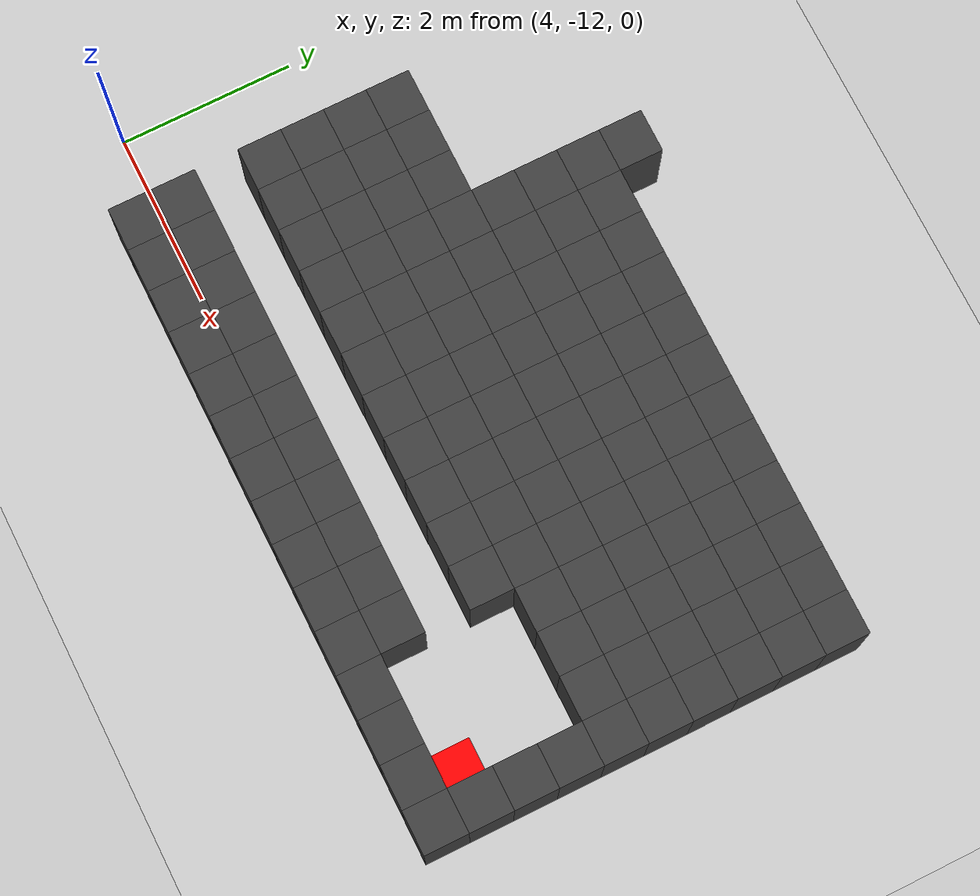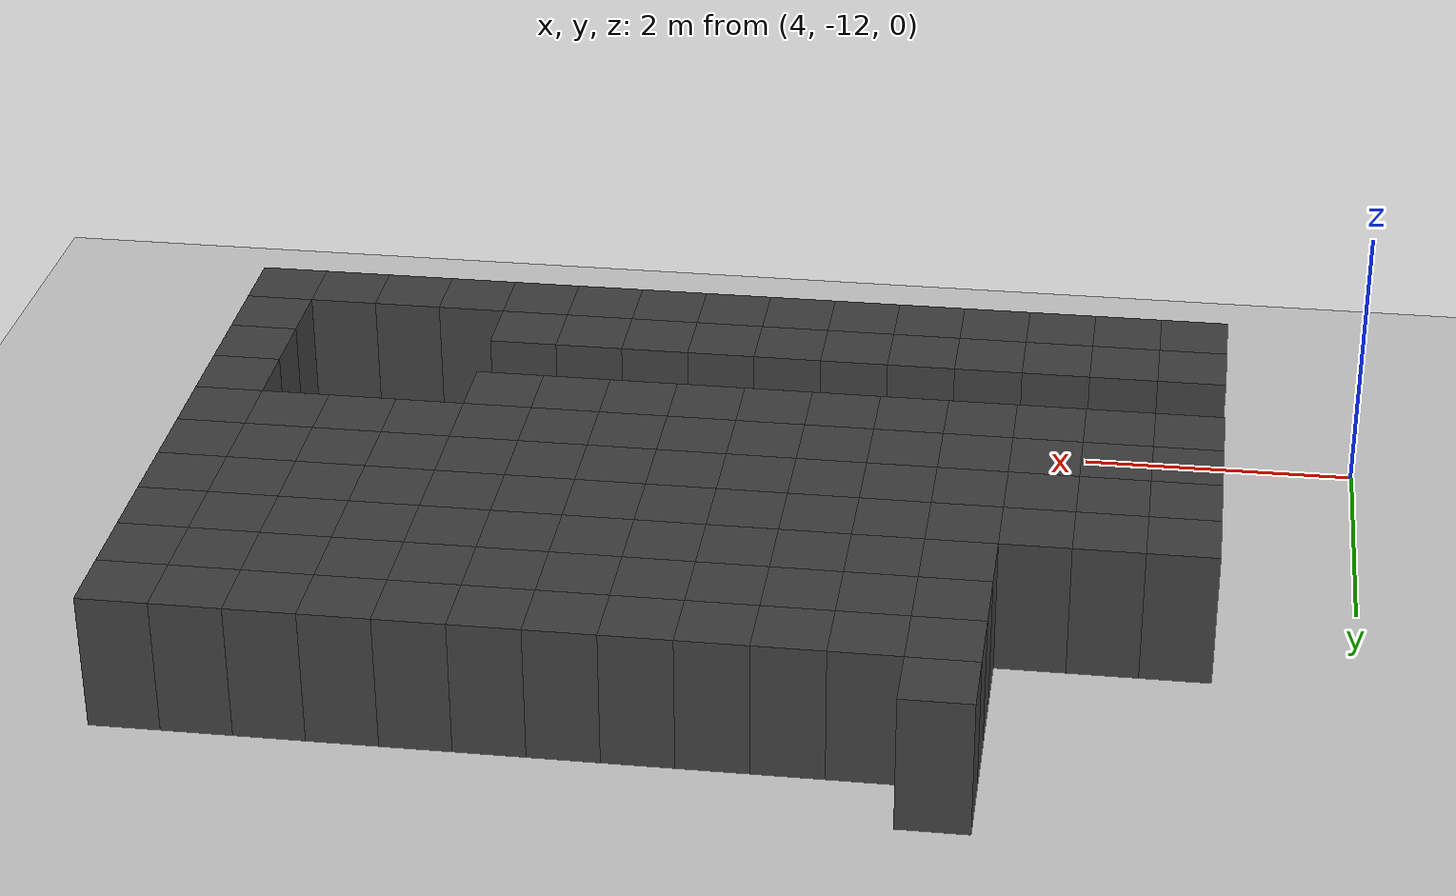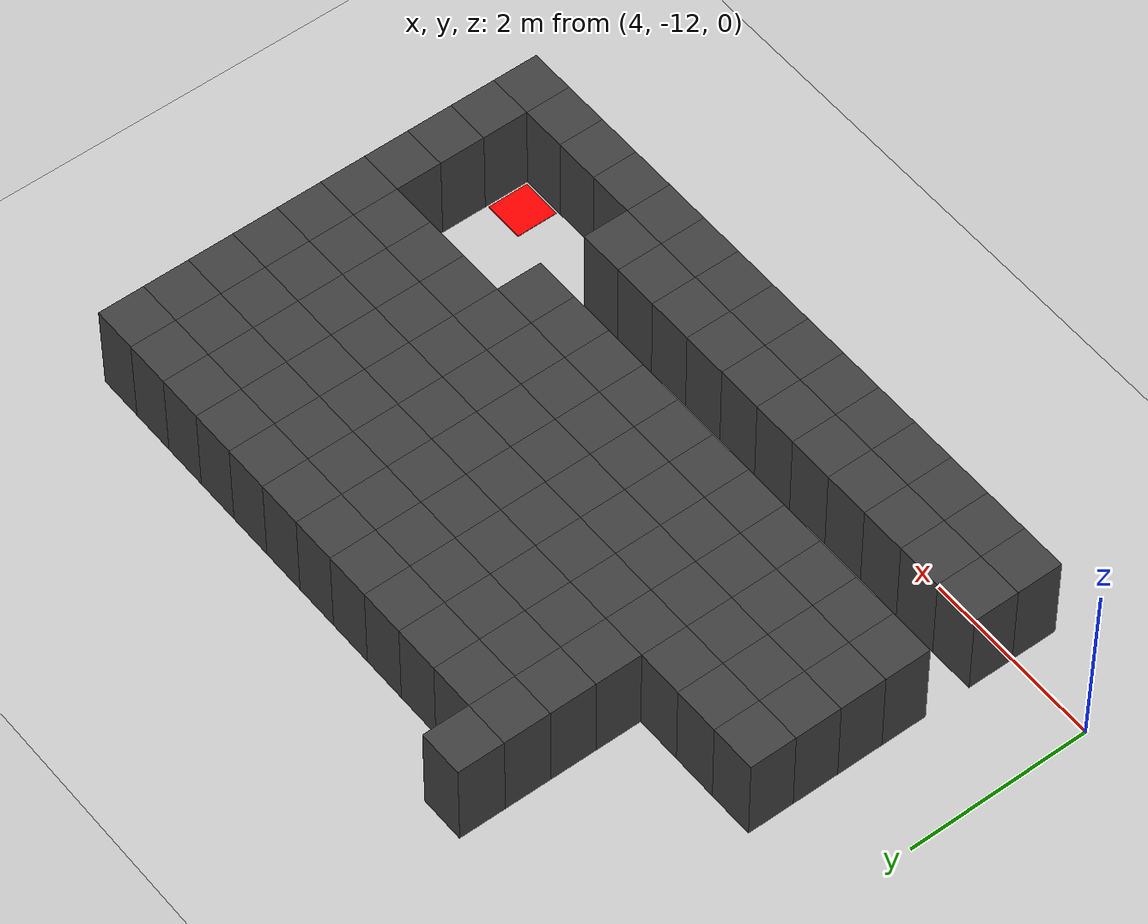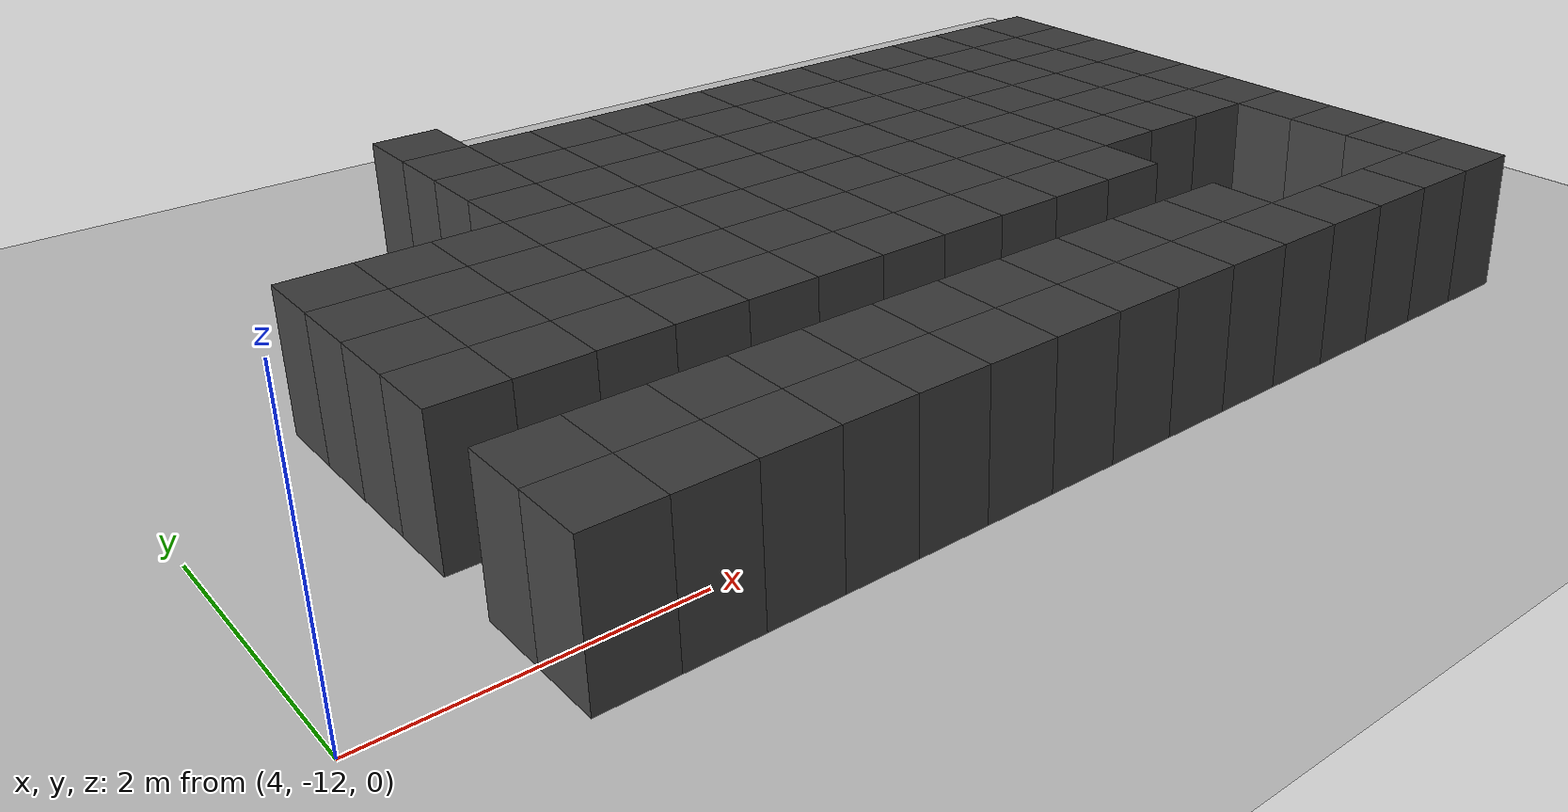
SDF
<sdf version="1.7">
 <world name="map_13364">
  <model name="ground_plane">
   <static>true</static>
   <link name="link">
    <collision name="collision">
     <geometry><plane><normal>0 0 1</normal><size>200 200</size></plane></geometry>
    </collision>
    <visual name="visual">
     <geometry><plane><normal>0 0 1</normal><size>200 200</size></plane></geometry>
     <material><ambient>0.8 0.8 0.8 1</ambient><diffuse>0.8 0.8 0.8 1</diffuse></material>
    </visual>
   </link>
  </model>
  <model name="maze_environment">
   <static>true</static>
   <link name="wall_1430">
    <pose>6.750 -7.250 0.500 0 0 0</pose>
    <collision name="col"><geometry><box><size>0.5 0.5 1.0</size></box></geometry></collision>
    <visual name="vis">
     <geometry><box><size>0.5 0.5 1.0</size></box></geometry>
     <material><ambient>0.15 0.15 0.15 1</ambient><diffuse>0.25 0.25 0.25 1</diffuse></material>
    </visual>
   </link>
   <link name="wall_1467">
    <pose>6.750 -7.750 0.500 0 0 0</pose>
    <collision name="col"><geometry><box><size>0.5 0.5 1.0</size></box></geometry></collision>
    <visual name="vis">
     <geometry><box><size>0.5 0.5 1.0</size></box></geometry>
     <material><ambient>0.15 0.15 0.15 1</ambient><diffuse>0.25 0.25 0.25 1</diffuse></material>
    </visual>
   </link>
   <link name="wall_1468">
    <pose>7.250 -7.750 0.500 0 0 0</pose>
    <collision name="col"><geometry><box><size>0.5 0.5 1.0</size></box></geometry></collision>
    <visual name="vis">
     <geometry><box><size>0.5 0.5 1.0</size></box></geometry>
     <material><ambient>0.15 0.15 0.15 1</ambient><diffuse>0.25 0.25 0.25 1</diffuse></material>
    </visual>
   </link>
   <link name="wall_1469">
    <pose>7.750 -7.750 0.500 0 0 0</pose>
    <collision name="col"><geometry><box><size>0.5 0.5 1.0</size></box></geometry></collision>
    <visual name="vis">
     <geometry><box><size>0.5 0.5 1.0</size></box></geometry>
     <material><ambient>0.15 0.15 0.15 1</ambient><diffuse>0.25 0.25 0.25 1</diffuse></material>
    </visual>
   </link>
   <link name="wall_1470">
    <pose>8.250 -7.750 0.500 0 0 0</pose>
    <collision name="col"><geometry><box><size>0.5 0.5 1.0</size></box></geometry></collision>
    <visual name="vis">
     <geometry><box><size>0.5 0.5 1.0</size></box></geometry>
     <material><ambient>0.15 0.15 0.15 1</ambient><diffuse>0.25 0.25 0.25 1</diffuse></material>
    </visual>
   </link>
   <link name="wall_1471">
    <pose>8.750 -7.750 0.500 0 0 0</pose>
    <collision name="col"><geometry><box><size>0.5 0.5 1.0</size></box></geometry></collision>
    <visual name="vis">
     <geometry><box><size>0.5 0.5 1.0</size></box></geometry>
     <material><ambient>0.15 0.15 0.15 1</ambient><diffuse>0.25 0.25 0.25 1</diffuse></material>
    </visual>
   </link>
   <link name="wall_1472">
    <pose>9.250 -7.750 0.500 0 0 0</pose>
    <collision name="col"><geometry><box><size>0.5 0.5 1.0</size></box></geometry></collision>
    <visual name="vis">
     <geometry><box><size>0.5 0.5 1.0</size></box></geometry>
     <material><ambient>0.15 0.15 0.15 1</ambient><diffuse>0.25 0.25 0.25 1</diffuse></material>
    </visual>
   </link>
   <link name="wall_1473">
    <pose>9.750 -7.750 0.500 0 0 0</pose>
    <collision name="col"><geometry><box><size>0.5 0.5 1.0</size></box></geometry></collision>
    <visual name="vis">
     <geometry><box><size>0.5 0.5 1.0</size></box></geometry>
     <material><ambient>0.15 0.15 0.15 1</ambient><diffuse>0.25 0.25 0.25 1</diffuse></material>
    </visual>
   </link>
   <link name="wall_1474">
    <pose>10.250 -7.750 0.500 0 0 0</pose>
    <collision name="col"><geometry><box><size>0.5 0.5 1.0</size></box></geometry></collision>
    <visual name="vis">
     <geometry><box><size>0.5 0.5 1.0</size></box></geometry>
     <material><ambient>0.15 0.15 0.15 1</ambient><diffuse>0.25 0.25 0.25 1</diffuse></material>
    </visual>
   </link>
   <link name="wall_1475">
    <pose>10.750 -7.750 0.500 0 0 0</pose>
    <collision name="col"><geometry><box><size>0.5 0.5 1.0</size></box></geometry></collision>
    <visual name="vis">
     <geometry><box><size>0.5 0.5 1.0</size></box></geometry>
     <material><ambient>0.15 0.15 0.15 1</ambient><diffuse>0.25 0.25 0.25 1</diffuse></material>
    </visual>
   </link>
   <link name="wall_1476">
    <pose>11.250 -7.750 0.500 0 0 0</pose>
    <collision name="col"><geometry><box><size>0.5 0.5 1.0</size></box></geometry></collision>
    <visual name="vis">
     <geometry><box><size>0.5 0.5 1.0</size></box></geometry>
     <material><ambient>0.15 0.15 0.15 1</ambient><diffuse>0.25 0.25 0.25 1</diffuse></material>
    </visual>
   </link>
   <link name="wall_1477">
    <pose>11.750 -7.750 0.500 0 0 0</pose>
    <collision name="col"><geometry><box><size>0.5 0.5 1.0</size></box></geometry></collision>
    <visual name="vis">
     <geometry><box><size>0.5 0.5 1.0</size></box></geometry>
     <material><ambient>0.15 0.15 0.15 1</ambient><diffuse>0.25 0.25 0.25 1</diffuse></material>
    </visual>
   </link>
   <link name="wall_1478">
    <pose>12.250 -7.750 0.500 0 0 0</pose>
    <collision name="col"><geometry><box><size>0.5 0.5 1.0</size></box></geometry></collision>
    <visual name="vis">
     <geometry><box><size>0.5 0.5 1.0</size></box></geometry>
     <material><ambient>0.15 0.15 0.15 1</ambient><diffuse>0.25 0.25 0.25 1</diffuse></material>
    </visual>
   </link>
   <link name="wall_1504">
    <pose>6.750 -8.250 0.500 0 0 0</pose>
    <collision name="col"><geometry><box><size>0.5 0.5 1.0</size></box></geometry></collision>
    <visual name="vis">
     <geometry><box><size>0.5 0.5 1.0</size></box></geometry>
     <material><ambient>0.15 0.15 0.15 1</ambient><diffuse>0.25 0.25 0.25 1</diffuse></material>
    </visual>
   </link>
   <link name="wall_1505">
    <pose>7.250 -8.250 0.500 0 0 0</pose>
    <collision name="col"><geometry><box><size>0.5 0.5 1.0</size></box></geometry></collision>
    <visual name="vis">
     <geometry><box><size>0.5 0.5 1.0</size></box></geometry>
     <material><ambient>0.15 0.15 0.15 1</ambient><diffuse>0.25 0.25 0.25 1</diffuse></material>
    </visual>
   </link>
   <link name="wall_1506">
    <pose>7.750 -8.250 0.500 0 0 0</pose>
    <collision name="col"><geometry><box><size>0.5 0.5 1.0</size></box></geometry></collision>
    <visual name="vis">
     <geometry><box><size>0.5 0.5 1.0</size></box></geometry>
     <material><ambient>0.15 0.15 0.15 1</ambient><diffuse>0.25 0.25 0.25 1</diffuse></material>
    </visual>
   </link>
   <link name="wall_1507">
    <pose>8.250 -8.250 0.500 0 0 0</pose>
    <collision name="col"><geometry><box><size>0.5 0.5 1.0</size></box></geometry></collision>
    <visual name="vis">
     <geometry><box><size>0.5 0.5 1.0</size></box></geometry>
     <material><ambient>0.15 0.15 0.15 1</ambient><diffuse>0.25 0.25 0.25 1</diffuse></material>
    </visual>
   </link>
   <link name="wall_1508">
    <pose>8.750 -8.250 0.500 0 0 0</pose>
    <collision name="col"><geometry><box><size>0.5 0.5 1.0</size></box></geometry></collision>
    <visual name="vis">
     <geometry><box><size>0.5 0.5 1.0</size></box></geometry>
     <material><ambient>0.15 0.15 0.15 1</ambient><diffuse>0.25 0.25 0.25 1</diffuse></material>
    </visual>
   </link>
   <link name="wall_1509">
    <pose>9.250 -8.250 0.500 0 0 0</pose>
    <collision name="col"><geometry><box><size>0.5 0.5 1.0</size></box></geometry></collision>
    <visual name="vis">
     <geometry><box><size>0.5 0.5 1.0</size></box></geometry>
     <material><ambient>0.15 0.15 0.15 1</ambient><diffuse>0.25 0.25 0.25 1</diffuse></material>
    </visual>
   </link>
   <link name="wall_1510">
    <pose>9.750 -8.250 0.500 0 0 0</pose>
    <collision name="col"><geometry><box><size>0.5 0.5 1.0</size></box></geometry></collision>
    <visual name="vis">
     <geometry><box><size>0.5 0.5 1.0</size></box></geometry>
     <material><ambient>0.15 0.15 0.15 1</ambient><diffuse>0.25 0.25 0.25 1</diffuse></material>
    </visual>
   </link>
   <link name="wall_1511">
    <pose>10.250 -8.250 0.500 0 0 0</pose>
    <collision name="col"><geometry><box><size>0.5 0.5 1.0</size></box></geometry></collision>
    <visual name="vis">
     <geometry><box><size>0.5 0.5 1.0</size></box></geometry>
     <material><ambient>0.15 0.15 0.15 1</ambient><diffuse>0.25 0.25 0.25 1</diffuse></material>
    </visual>
   </link>
   <link name="wall_1512">
    <pose>10.750 -8.250 0.500 0 0 0</pose>
    <collision name="col"><geometry><box><size>0.5 0.5 1.0</size></box></geometry></collision>
    <visual name="vis">
     <geometry><box><size>0.5 0.5 1.0</size></box></geometry>
     <material><ambient>0.15 0.15 0.15 1</ambient><diffuse>0.25 0.25 0.25 1</diffuse></material>
    </visual>
   </link>
   <link name="wall_1513">
    <pose>11.250 -8.250 0.500 0 0 0</pose>
    <collision name="col"><geometry><box><size>0.5 0.5 1.0</size></box></geometry></collision>
    <visual name="vis">
     <geometry><box><size>0.5 0.5 1.0</size></box></geometry>
     <material><ambient>0.15 0.15 0.15 1</ambient><diffuse>0.25 0.25 0.25 1</diffuse></material>
    </visual>
   </link>
   <link name="wall_1514">
    <pose>11.750 -8.250 0.500 0 0 0</pose>
    <collision name="col"><geometry><box><size>0.5 0.5 1.0</size></box></geometry></collision>
    <visual name="vis">
     <geometry><box><size>0.5 0.5 1.0</size></box></geometry>
     <material><ambient>0.15 0.15 0.15 1</ambient><diffuse>0.25 0.25 0.25 1</diffuse></material>
    </visual>
   </link>
   <link name="wall_1515">
    <pose>12.250 -8.250 0.500 0 0 0</pose>
    <collision name="col"><geometry><box><size>0.5 0.5 1.0</size></box></geometry></collision>
    <visual name="vis">
     <geometry><box><size>0.5 0.5 1.0</size></box></geometry>
     <material><ambient>0.15 0.15 0.15 1</ambient><diffuse>0.25 0.25 0.25 1</diffuse></material>
    </visual>
   </link>
   <link name="wall_1541">
    <pose>6.750 -8.750 0.500 0 0 0</pose>
    <collision name="col"><geometry><box><size>0.5 0.5 1.0</size></box></geometry></collision>
    <visual name="vis">
     <geometry><box><size>0.5 0.5 1.0</size></box></geometry>
     <material><ambient>0.15 0.15 0.15 1</ambient><diffuse>0.25 0.25 0.25 1</diffuse></material>
    </visual>
   </link>
   <link name="wall_1542">
    <pose>7.250 -8.750 0.500 0 0 0</pose>
    <collision name="col"><geometry><box><size>0.5 0.5 1.0</size></box></geometry></collision>
    <visual name="vis">
     <geometry><box><size>0.5 0.5 1.0</size></box></geometry>
     <material><ambient>0.15 0.15 0.15 1</ambient><diffuse>0.25 0.25 0.25 1</diffuse></material>
    </visual>
   </link>
   <link name="wall_1543">
    <pose>7.750 -8.750 0.500 0 0 0</pose>
    <collision name="col"><geometry><box><size>0.5 0.5 1.0</size></box></geometry></collision>
    <visual name="vis">
     <geometry><box><size>0.5 0.5 1.0</size></box></geometry>
     <material><ambient>0.15 0.15 0.15 1</ambient><diffuse>0.25 0.25 0.25 1</diffuse></material>
    </visual>
   </link>
   <link name="wall_1544">
    <pose>8.250 -8.750 0.500 0 0 0</pose>
    <collision name="col"><geometry><box><size>0.5 0.5 1.0</size></box></geometry></collision>
    <visual name="vis">
     <geometry><box><size>0.5 0.5 1.0</size></box></geometry>
     <material><ambient>0.15 0.15 0.15 1</ambient><diffuse>0.25 0.25 0.25 1</diffuse></material>
    </visual>
   </link>
   <link name="wall_1545">
    <pose>8.750 -8.750 0.500 0 0 0</pose>
    <collision name="col"><geometry><box><size>0.5 0.5 1.0</size></box></geometry></collision>
    <visual name="vis">
     <geometry><box><size>0.5 0.5 1.0</size></box></geometry>
     <material><ambient>0.15 0.15 0.15 1</ambient><diffuse>0.25 0.25 0.25 1</diffuse></material>
    </visual>
   </link>
   <link name="wall_1546">
    <pose>9.250 -8.750 0.500 0 0 0</pose>
    <collision name="col"><geometry><box><size>0.5 0.5 1.0</size></box></geometry></collision>
    <visual name="vis">
     <geometry><box><size>0.5 0.5 1.0</size></box></geometry>
     <material><ambient>0.15 0.15 0.15 1</ambient><diffuse>0.25 0.25 0.25 1</diffuse></material>
    </visual>
   </link>
   <link name="wall_1547">
    <pose>9.750 -8.750 0.500 0 0 0</pose>
    <collision name="col"><geometry><box><size>0.5 0.5 1.0</size></box></geometry></collision>
    <visual name="vis">
     <geometry><box><size>0.5 0.5 1.0</size></box></geometry>
     <material><ambient>0.15 0.15 0.15 1</ambient><diffuse>0.25 0.25 0.25 1</diffuse></material>
    </visual>
   </link>
   <link name="wall_1548">
    <pose>10.250 -8.750 0.500 0 0 0</pose>
    <collision name="col"><geometry><box><size>0.5 0.5 1.0</size></box></geometry></collision>
    <visual name="vis">
     <geometry><box><size>0.5 0.5 1.0</size></box></geometry>
     <material><ambient>0.15 0.15 0.15 1</ambient><diffuse>0.25 0.25 0.25 1</diffuse></material>
    </visual>
   </link>
   <link name="wall_1549">
    <pose>10.750 -8.750 0.500 0 0 0</pose>
    <collision name="col"><geometry><box><size>0.5 0.5 1.0</size></box></geometry></collision>
    <visual name="vis">
     <geometry><box><size>0.5 0.5 1.0</size></box></geometry>
     <material><ambient>0.15 0.15 0.15 1</ambient><diffuse>0.25 0.25 0.25 1</diffuse></material>
    </visual>
   </link>
   <link name="wall_1550">
    <pose>11.250 -8.750 0.500 0 0 0</pose>
    <collision name="col"><geometry><box><size>0.5 0.5 1.0</size></box></geometry></collision>
    <visual name="vis">
     <geometry><box><size>0.5 0.5 1.0</size></box></geometry>
     <material><ambient>0.15 0.15 0.15 1</ambient><diffuse>0.25 0.25 0.25 1</diffuse></material>
    </visual>
   </link>
   <link name="wall_1551">
    <pose>11.750 -8.750 0.500 0 0 0</pose>
    <collision name="col"><geometry><box><size>0.5 0.5 1.0</size></box></geometry></collision>
    <visual name="vis">
     <geometry><box><size>0.5 0.5 1.0</size></box></geometry>
     <material><ambient>0.15 0.15 0.15 1</ambient><diffuse>0.25 0.25 0.25 1</diffuse></material>
    </visual>
   </link>
   <link name="wall_1552">
    <pose>12.250 -8.750 0.500 0 0 0</pose>
    <collision name="col"><geometry><box><size>0.5 0.5 1.0</size></box></geometry></collision>
    <visual name="vis">
     <geometry><box><size>0.5 0.5 1.0</size></box></geometry>
     <material><ambient>0.15 0.15 0.15 1</ambient><diffuse>0.25 0.25 0.25 1</diffuse></material>
    </visual>
   </link>
   <link name="wall_1581">
    <pose>5.250 -9.250 0.500 0 0 0</pose>
    <collision name="col"><geometry><box><size>0.5 0.5 1.0</size></box></geometry></collision>
    <visual name="vis">
     <geometry><box><size>0.5 0.5 1.0</size></box></geometry>
     <material><ambient>0.15 0.15 0.15 1</ambient><diffuse>0.25 0.25 0.25 1</diffuse></material>
    </visual>
   </link>
   <link name="wall_1582">
    <pose>5.750 -9.250 0.500 0 0 0</pose>
    <collision name="col"><geometry><box><size>0.5 0.5 1.0</size></box></geometry></collision>
    <visual name="vis">
     <geometry><box><size>0.5 0.5 1.0</size></box></geometry>
     <material><ambient>0.15 0.15 0.15 1</ambient><diffuse>0.25 0.25 0.25 1</diffuse></material>
    </visual>
   </link>
   <link name="wall_1583">
    <pose>6.250 -9.250 0.500 0 0 0</pose>
    <collision name="col"><geometry><box><size>0.5 0.5 1.0</size></box></geometry></collision>
    <visual name="vis">
     <geometry><box><size>0.5 0.5 1.0</size></box></geometry>
     <material><ambient>0.15 0.15 0.15 1</ambient><diffuse>0.25 0.25 0.25 1</diffuse></material>
    </visual>
   </link>
   <link name="wall_1584">
    <pose>6.750 -9.250 0.500 0 0 0</pose>
    <collision name="col"><geometry><box><size>0.5 0.5 1.0</size></box></geometry></collision>
    <visual name="vis">
     <geometry><box><size>0.5 0.5 1.0</size></box></geometry>
     <material><ambient>0.15 0.15 0.15 1</ambient><diffuse>0.25 0.25 0.25 1</diffuse></material>
    </visual>
   </link>
   <link name="wall_1585">
    <pose>7.250 -9.250 0.500 0 0 0</pose>
    <collision name="col"><geometry><box><size>0.5 0.5 1.0</size></box></geometry></collision>
    <visual name="vis">
     <geometry><box><size>0.5 0.5 1.0</size></box></geometry>
     <material><ambient>0.15 0.15 0.15 1</ambient><diffuse>0.25 0.25 0.25 1</diffuse></material>
    </visual>
   </link>
   <link name="wall_1586">
    <pose>7.750 -9.250 0.500 0 0 0</pose>
    <collision name="col"><geometry><box><size>0.5 0.5 1.0</size></box></geometry></collision>
    <visual name="vis">
     <geometry><box><size>0.5 0.5 1.0</size></box></geometry>
     <material><ambient>0.15 0.15 0.15 1</ambient><diffuse>0.25 0.25 0.25 1</diffuse></material>
    </visual>
   </link>
   <link name="wall_1587">
    <pose>8.250 -9.250 0.500 0 0 0</pose>
    <collision name="col"><geometry><box><size>0.5 0.5 1.0</size></box></geometry></collision>
    <visual name="vis">
     <geometry><box><size>0.5 0.5 1.0</size></box></geometry>
     <material><ambient>0.15 0.15 0.15 1</ambient><diffuse>0.25 0.25 0.25 1</diffuse></material>
    </visual>
   </link>
   <link name="wall_1588">
    <pose>8.750 -9.250 0.500 0 0 0</pose>
    <collision name="col"><geometry><box><size>0.5 0.5 1.0</size></box></geometry></collision>
    <visual name="vis">
     <geometry><box><size>0.5 0.5 1.0</size></box></geometry>
     <material><ambient>0.15 0.15 0.15 1</ambient><diffuse>0.25 0.25 0.25 1</diffuse></material>
    </visual>
   </link>
   <link name="wall_1589">
    <pose>9.250 -9.250 0.500 0 0 0</pose>
    <collision name="col"><geometry><box><size>0.5 0.5 1.0</size></box></geometry></collision>
    <visual name="vis">
     <geometry><box><size>0.5 0.5 1.0</size></box></geometry>
     <material><ambient>0.15 0.15 0.15 1</ambient><diffuse>0.25 0.25 0.25 1</diffuse></material>
    </visual>
   </link>
   <link name="wall_1590">
    <pose>9.750 -9.250 0.500 0 0 0</pose>
    <collision name="col"><geometry><box><size>0.5 0.5 1.0</size></box></geometry></collision>
    <visual name="vis">
     <geometry><box><size>0.5 0.5 1.0</size></box></geometry>
     <material><ambient>0.15 0.15 0.15 1</ambient><diffuse>0.25 0.25 0.25 1</diffuse></material>
    </visual>
   </link>
   <link name="wall_1591">
    <pose>10.250 -9.250 0.500 0 0 0</pose>
    <collision name="col"><geometry><box><size>0.5 0.5 1.0</size></box></geometry></collision>
    <visual name="vis">
     <geometry><box><size>0.5 0.5 1.0</size></box></geometry>
     <material><ambient>0.15 0.15 0.15 1</ambient><diffuse>0.25 0.25 0.25 1</diffuse></material>
    </visual>
   </link>
   <link name="wall_1592">
    <pose>10.750 -9.250 0.500 0 0 0</pose>
    <collision name="col"><geometry><box><size>0.5 0.5 1.0</size></box></geometry></collision>
    <visual name="vis">
     <geometry><box><size>0.5 0.5 1.0</size></box></geometry>
     <material><ambient>0.15 0.15 0.15 1</ambient><diffuse>0.25 0.25 0.25 1</diffuse></material>
    </visual>
   </link>
   <link name="wall_1593">
    <pose>11.250 -9.250 0.500 0 0 0</pose>
    <collision name="col"><geometry><box><size>0.5 0.5 1.0</size></box></geometry></collision>
    <visual name="vis">
     <geometry><box><size>0.5 0.5 1.0</size></box></geometry>
     <material><ambient>0.15 0.15 0.15 1</ambient><diffuse>0.25 0.25 0.25 1</diffuse></material>
    </visual>
   </link>
   <link name="wall_1594">
    <pose>11.750 -9.250 0.500 0 0 0</pose>
    <collision name="col"><geometry><box><size>0.5 0.5 1.0</size></box></geometry></collision>
    <visual name="vis">
     <geometry><box><size>0.5 0.5 1.0</size></box></geometry>
     <material><ambient>0.15 0.15 0.15 1</ambient><diffuse>0.25 0.25 0.25 1</diffuse></material>
    </visual>
   </link>
   <link name="wall_1595">
    <pose>12.250 -9.250 0.500 0 0 0</pose>
    <collision name="col"><geometry><box><size>0.5 0.5 1.0</size></box></geometry></collision>
    <visual name="vis">
     <geometry><box><size>0.5 0.5 1.0</size></box></geometry>
     <material><ambient>0.15 0.15 0.15 1</ambient><diffuse>0.25 0.25 0.25 1</diffuse></material>
    </visual>
   </link>
   <link name="wall_1624">
    <pose>5.250 -9.750 0.500 0 0 0</pose>
    <collision name="col"><geometry><box><size>0.5 0.5 1.0</size></box></geometry></collision>
    <visual name="vis">
     <geometry><box><size>0.5 0.5 1.0</size></box></geometry>
     <material><ambient>0.15 0.15 0.15 1</ambient><diffuse>0.25 0.25 0.25 1</diffuse></material>
    </visual>
   </link>
   <link name="wall_1625">
    <pose>5.750 -9.750 0.500 0 0 0</pose>
    <collision name="col"><geometry><box><size>0.5 0.5 1.0</size></box></geometry></collision>
    <visual name="vis">
     <geometry><box><size>0.5 0.5 1.0</size></box></geometry>
     <material><ambient>0.15 0.15 0.15 1</ambient><diffuse>0.25 0.25 0.25 1</diffuse></material>
    </visual>
   </link>
   <link name="wall_1626">
    <pose>6.250 -9.750 0.500 0 0 0</pose>
    <collision name="col"><geometry><box><size>0.5 0.5 1.0</size></box></geometry></collision>
    <visual name="vis">
     <geometry><box><size>0.5 0.5 1.0</size></box></geometry>
     <material><ambient>0.15 0.15 0.15 1</ambient><diffuse>0.25 0.25 0.25 1</diffuse></material>
    </visual>
   </link>
   <link name="wall_1627">
    <pose>6.750 -9.750 0.500 0 0 0</pose>
    <collision name="col"><geometry><box><size>0.5 0.5 1.0</size></box></geometry></collision>
    <visual name="vis">
     <geometry><box><size>0.5 0.5 1.0</size></box></geometry>
     <material><ambient>0.15 0.15 0.15 1</ambient><diffuse>0.25 0.25 0.25 1</diffuse></material>
    </visual>
   </link>
   <link name="wall_1628">
    <pose>7.250 -9.750 0.500 0 0 0</pose>
    <collision name="col"><geometry><box><size>0.5 0.5 1.0</size></box></geometry></collision>
    <visual name="vis">
     <geometry><box><size>0.5 0.5 1.0</size></box></geometry>
     <material><ambient>0.15 0.15 0.15 1</ambient><diffuse>0.25 0.25 0.25 1</diffuse></material>
    </visual>
   </link>
   <link name="wall_1629">
    <pose>7.750 -9.750 0.500 0 0 0</pose>
    <collision name="col"><geometry><box><size>0.5 0.5 1.0</size></box></geometry></collision>
    <visual name="vis">
     <geometry><box><size>0.5 0.5 1.0</size></box></geometry>
     <material><ambient>0.15 0.15 0.15 1</ambient><diffuse>0.25 0.25 0.25 1</diffuse></material>
    </visual>
   </link>
   <link name="wall_1630">
    <pose>8.250 -9.750 0.500 0 0 0</pose>
    <collision name="col"><geometry><box><size>0.5 0.5 1.0</size></box></geometry></collision>
    <visual name="vis">
     <geometry><box><size>0.5 0.5 1.0</size></box></geometry>
     <material><ambient>0.15 0.15 0.15 1</ambient><diffuse>0.25 0.25 0.25 1</diffuse></material>
    </visual>
   </link>
   <link name="wall_1631">
    <pose>8.750 -9.750 0.500 0 0 0</pose>
    <collision name="col"><geometry><box><size>0.5 0.5 1.0</size></box></geometry></collision>
    <visual name="vis">
     <geometry><box><size>0.5 0.5 1.0</size></box></geometry>
     <material><ambient>0.15 0.15 0.15 1</ambient><diffuse>0.25 0.25 0.25 1</diffuse></material>
    </visual>
   </link>
   <link name="wall_1632">
    <pose>9.250 -9.750 0.500 0 0 0</pose>
    <collision name="col"><geometry><box><size>0.5 0.5 1.0</size></box></geometry></collision>
    <visual name="vis">
     <geometry><box><size>0.5 0.5 1.0</size></box></geometry>
     <material><ambient>0.15 0.15 0.15 1</ambient><diffuse>0.25 0.25 0.25 1</diffuse></material>
    </visual>
   </link>
   <link name="wall_1633">
    <pose>9.750 -9.750 0.500 0 0 0</pose>
    <collision name="col"><geometry><box><size>0.5 0.5 1.0</size></box></geometry></collision>
    <visual name="vis">
     <geometry><box><size>0.5 0.5 1.0</size></box></geometry>
     <material><ambient>0.15 0.15 0.15 1</ambient><diffuse>0.25 0.25 0.25 1</diffuse></material>
    </visual>
   </link>
   <link name="wall_1634">
    <pose>10.250 -9.750 0.500 0 0 0</pose>
    <collision name="col"><geometry><box><size>0.5 0.5 1.0</size></box></geometry></collision>
    <visual name="vis">
     <geometry><box><size>0.5 0.5 1.0</size></box></geometry>
     <material><ambient>0.15 0.15 0.15 1</ambient><diffuse>0.25 0.25 0.25 1</diffuse></material>
    </visual>
   </link>
   <link name="wall_1635">
    <pose>10.750 -9.750 0.500 0 0 0</pose>
    <collision name="col"><geometry><box><size>0.5 0.5 1.0</size></box></geometry></collision>
    <visual name="vis">
     <geometry><box><size>0.5 0.5 1.0</size></box></geometry>
     <material><ambient>0.15 0.15 0.15 1</ambient><diffuse>0.25 0.25 0.25 1</diffuse></material>
    </visual>
   </link>
   <link name="wall_1636">
    <pose>11.250 -9.750 0.500 0 0 0</pose>
    <collision name="col"><geometry><box><size>0.5 0.5 1.0</size></box></geometry></collision>
    <visual name="vis">
     <geometry><box><size>0.5 0.5 1.0</size></box></geometry>
     <material><ambient>0.15 0.15 0.15 1</ambient><diffuse>0.25 0.25 0.25 1</diffuse></material>
    </visual>
   </link>
   <link name="wall_1637">
    <pose>11.750 -9.750 0.500 0 0 0</pose>
    <collision name="col"><geometry><box><size>0.5 0.5 1.0</size></box></geometry></collision>
    <visual name="vis">
     <geometry><box><size>0.5 0.5 1.0</size></box></geometry>
     <material><ambient>0.15 0.15 0.15 1</ambient><diffuse>0.25 0.25 0.25 1</diffuse></material>
    </visual>
   </link>
   <link name="wall_1638">
    <pose>12.250 -9.750 0.500 0 0 0</pose>
    <collision name="col"><geometry><box><size>0.5 0.5 1.0</size></box></geometry></collision>
    <visual name="vis">
     <geometry><box><size>0.5 0.5 1.0</size></box></geometry>
     <material><ambient>0.15 0.15 0.15 1</ambient><diffuse>0.25 0.25 0.25 1</diffuse></material>
    </visual>
   </link>
   <link name="wall_1667">
    <pose>5.250 -10.250 0.500 0 0 0</pose>
    <collision name="col"><geometry><box><size>0.5 0.5 1.0</size></box></geometry></collision>
    <visual name="vis">
     <geometry><box><size>0.5 0.5 1.0</size></box></geometry>
     <material><ambient>0.15 0.15 0.15 1</ambient><diffuse>0.25 0.25 0.25 1</diffuse></material>
    </visual>
   </link>
   <link name="wall_1668">
    <pose>5.750 -10.250 0.500 0 0 0</pose>
    <collision name="col"><geometry><box><size>0.5 0.5 1.0</size></box></geometry></collision>
    <visual name="vis">
     <geometry><box><size>0.5 0.5 1.0</size></box></geometry>
     <material><ambient>0.15 0.15 0.15 1</ambient><diffuse>0.25 0.25 0.25 1</diffuse></material>
    </visual>
   </link>
   <link name="wall_1669">
    <pose>6.250 -10.250 0.500 0 0 0</pose>
    <collision name="col"><geometry><box><size>0.5 0.5 1.0</size></box></geometry></collision>
    <visual name="vis">
     <geometry><box><size>0.5 0.5 1.0</size></box></geometry>
     <material><ambient>0.15 0.15 0.15 1</ambient><diffuse>0.25 0.25 0.25 1</diffuse></material>
    </visual>
   </link>
   <link name="wall_1670">
    <pose>6.750 -10.250 0.500 0 0 0</pose>
    <collision name="col"><geometry><box><size>0.5 0.5 1.0</size></box></geometry></collision>
    <visual name="vis">
     <geometry><box><size>0.5 0.5 1.0</size></box></geometry>
     <material><ambient>0.15 0.15 0.15 1</ambient><diffuse>0.25 0.25 0.25 1</diffuse></material>
    </visual>
   </link>
   <link name="wall_1671">
    <pose>7.250 -10.250 0.500 0 0 0</pose>
    <collision name="col"><geometry><box><size>0.5 0.5 1.0</size></box></geometry></collision>
    <visual name="vis">
     <geometry><box><size>0.5 0.5 1.0</size></box></geometry>
     <material><ambient>0.15 0.15 0.15 1</ambient><diffuse>0.25 0.25 0.25 1</diffuse></material>
    </visual>
   </link>
   <link name="wall_1672">
    <pose>7.750 -10.250 0.500 0 0 0</pose>
    <collision name="col"><geometry><box><size>0.5 0.5 1.0</size></box></geometry></collision>
    <visual name="vis">
     <geometry><box><size>0.5 0.5 1.0</size></box></geometry>
     <material><ambient>0.15 0.15 0.15 1</ambient><diffuse>0.25 0.25 0.25 1</diffuse></material>
    </visual>
   </link>
   <link name="wall_1673">
    <pose>8.250 -10.250 0.500 0 0 0</pose>
    <collision name="col"><geometry><box><size>0.5 0.5 1.0</size></box></geometry></collision>
    <visual name="vis">
     <geometry><box><size>0.5 0.5 1.0</size></box></geometry>
     <material><ambient>0.15 0.15 0.15 1</ambient><diffuse>0.25 0.25 0.25 1</diffuse></material>
    </visual>
   </link>
   <link name="wall_1674">
    <pose>8.750 -10.250 0.500 0 0 0</pose>
    <collision name="col"><geometry><box><size>0.5 0.5 1.0</size></box></geometry></collision>
    <visual name="vis">
     <geometry><box><size>0.5 0.5 1.0</size></box></geometry>
     <material><ambient>0.15 0.15 0.15 1</ambient><diffuse>0.25 0.25 0.25 1</diffuse></material>
    </visual>
   </link>
   <link name="wall_1675">
    <pose>9.250 -10.250 0.500 0 0 0</pose>
    <collision name="col"><geometry><box><size>0.5 0.5 1.0</size></box></geometry></collision>
    <visual name="vis">
     <geometry><box><size>0.5 0.5 1.0</size></box></geometry>
     <material><ambient>0.15 0.15 0.15 1</ambient><diffuse>0.25 0.25 0.25 1</diffuse></material>
    </visual>
   </link>
   <link name="wall_1676">
    <pose>9.750 -10.250 0.500 0 0 0</pose>
    <collision name="col"><geometry><box><size>0.5 0.5 1.0</size></box></geometry></collision>
    <visual name="vis">
     <geometry><box><size>0.5 0.5 1.0</size></box></geometry>
     <material><ambient>0.15 0.15 0.15 1</ambient><diffuse>0.25 0.25 0.25 1</diffuse></material>
    </visual>
   </link>
   <link name="wall_1677">
    <pose>10.250 -10.250 0.500 0 0 0</pose>
    <collision name="col"><geometry><box><size>0.5 0.5 1.0</size></box></geometry></collision>
    <visual name="vis">
     <geometry><box><size>0.5 0.5 1.0</size></box></geometry>
     <material><ambient>0.15 0.15 0.15 1</ambient><diffuse>0.25 0.25 0.25 1</diffuse></material>
    </visual>
   </link>
   <link name="wall_1678">
    <pose>10.750 -10.250 0.500 0 0 0</pose>
    <collision name="col"><geometry><box><size>0.5 0.5 1.0</size></box></geometry></collision>
    <visual name="vis">
     <geometry><box><size>0.5 0.5 1.0</size></box></geometry>
     <material><ambient>0.15 0.15 0.15 1</ambient><diffuse>0.25 0.25 0.25 1</diffuse></material>
    </visual>
   </link>
   <link name="wall_1679">
    <pose>11.250 -10.250 0.500 0 0 0</pose>
    <collision name="col"><geometry><box><size>0.5 0.5 1.0</size></box></geometry></collision>
    <visual name="vis">
     <geometry><box><size>0.5 0.5 1.0</size></box></geometry>
     <material><ambient>0.15 0.15 0.15 1</ambient><diffuse>0.25 0.25 0.25 1</diffuse></material>
    </visual>
   </link>
   <link name="wall_1680">
    <pose>11.750 -10.250 0.500 0 0 0</pose>
    <collision name="col"><geometry><box><size>0.5 0.5 1.0</size></box></geometry></collision>
    <visual name="vis">
     <geometry><box><size>0.5 0.5 1.0</size></box></geometry>
     <material><ambient>0.15 0.15 0.15 1</ambient><diffuse>0.25 0.25 0.25 1</diffuse></material>
    </visual>
   </link>
   <link name="wall_1681">
    <pose>12.250 -10.250 0.500 0 0 0</pose>
    <collision name="col"><geometry><box><size>0.5 0.5 1.0</size></box></geometry></collision>
    <visual name="vis">
     <geometry><box><size>0.5 0.5 1.0</size></box></geometry>
     <material><ambient>0.15 0.15 0.15 1</ambient><diffuse>0.25 0.25 0.25 1</diffuse></material>
    </visual>
   </link>
   <link name="wall_1710">
    <pose>5.250 -10.750 0.500 0 0 0</pose>
    <collision name="col"><geometry><box><size>0.5 0.5 1.0</size></box></geometry></collision>
    <visual name="vis">
     <geometry><box><size>0.5 0.5 1.0</size></box></geometry>
     <material><ambient>0.15 0.15 0.15 1</ambient><diffuse>0.25 0.25 0.25 1</diffuse></material>
    </visual>
   </link>
   <link name="wall_1711">
    <pose>5.750 -10.750 0.500 0 0 0</pose>
    <collision name="col"><geometry><box><size>0.5 0.5 1.0</size></box></geometry></collision>
    <visual name="vis">
     <geometry><box><size>0.5 0.5 1.0</size></box></geometry>
     <material><ambient>0.15 0.15 0.15 1</ambient><diffuse>0.25 0.25 0.25 1</diffuse></material>
    </visual>
   </link>
   <link name="wall_1712">
    <pose>6.250 -10.750 0.500 0 0 0</pose>
    <collision name="col"><geometry><box><size>0.5 0.5 1.0</size></box></geometry></collision>
    <visual name="vis">
     <geometry><box><size>0.5 0.5 1.0</size></box></geometry>
     <material><ambient>0.15 0.15 0.15 1</ambient><diffuse>0.25 0.25 0.25 1</diffuse></material>
    </visual>
   </link>
   <link name="wall_1713">
    <pose>6.750 -10.750 0.500 0 0 0</pose>
    <collision name="col"><geometry><box><size>0.5 0.5 1.0</size></box></geometry></collision>
    <visual name="vis">
     <geometry><box><size>0.5 0.5 1.0</size></box></geometry>
     <material><ambient>0.15 0.15 0.15 1</ambient><diffuse>0.25 0.25 0.25 1</diffuse></material>
    </visual>
   </link>
   <link name="wall_1714">
    <pose>7.250 -10.750 0.500 0 0 0</pose>
    <collision name="col"><geometry><box><size>0.5 0.5 1.0</size></box></geometry></collision>
    <visual name="vis">
     <geometry><box><size>0.5 0.5 1.0</size></box></geometry>
     <material><ambient>0.15 0.15 0.15 1</ambient><diffuse>0.25 0.25 0.25 1</diffuse></material>
    </visual>
   </link>
   <link name="wall_1715">
    <pose>7.750 -10.750 0.500 0 0 0</pose>
    <collision name="col"><geometry><box><size>0.5 0.5 1.0</size></box></geometry></collision>
    <visual name="vis">
     <geometry><box><size>0.5 0.5 1.0</size></box></geometry>
     <material><ambient>0.15 0.15 0.15 1</ambient><diffuse>0.25 0.25 0.25 1</diffuse></material>
    </visual>
   </link>
   <link name="wall_1716">
    <pose>8.250 -10.750 0.500 0 0 0</pose>
    <collision name="col"><geometry><box><size>0.5 0.5 1.0</size></box></geometry></collision>
    <visual name="vis">
     <geometry><box><size>0.5 0.5 1.0</size></box></geometry>
     <material><ambient>0.15 0.15 0.15 1</ambient><diffuse>0.25 0.25 0.25 1</diffuse></material>
    </visual>
   </link>
   <link name="wall_1717">
    <pose>8.750 -10.750 0.500 0 0 0</pose>
    <collision name="col"><geometry><box><size>0.5 0.5 1.0</size></box></geometry></collision>
    <visual name="vis">
     <geometry><box><size>0.5 0.5 1.0</size></box></geometry>
     <material><ambient>0.15 0.15 0.15 1</ambient><diffuse>0.25 0.25 0.25 1</diffuse></material>
    </visual>
   </link>
   <link name="wall_1718">
    <pose>9.250 -10.750 0.500 0 0 0</pose>
    <collision name="col"><geometry><box><size>0.5 0.5 1.0</size></box></geometry></collision>
    <visual name="vis">
     <geometry><box><size>0.5 0.5 1.0</size></box></geometry>
     <material><ambient>0.15 0.15 0.15 1</ambient><diffuse>0.25 0.25 0.25 1</diffuse></material>
    </visual>
   </link>
   <link name="wall_1719">
    <pose>9.750 -10.750 0.500 0 0 0</pose>
    <collision name="col"><geometry><box><size>0.5 0.5 1.0</size></box></geometry></collision>
    <visual name="vis">
     <geometry><box><size>0.5 0.5 1.0</size></box></geometry>
     <material><ambient>0.15 0.15 0.15 1</ambient><diffuse>0.25 0.25 0.25 1</diffuse></material>
    </visual>
   </link>
   <link name="wall_1720">
    <pose>10.250 -10.750 0.500 0 0 0</pose>
    <collision name="col"><geometry><box><size>0.5 0.5 1.0</size></box></geometry></collision>
    <visual name="vis">
     <geometry><box><size>0.5 0.5 1.0</size></box></geometry>
     <material><ambient>0.15 0.15 0.15 1</ambient><diffuse>0.25 0.25 0.25 1</diffuse></material>
    </visual>
   </link>
   <link name="wall_1721">
    <pose>12.250 -10.750 0.500 0 0 0</pose>
    <collision name="col"><geometry><box><size>0.5 0.5 1.0</size></box></geometry></collision>
    <visual name="vis">
     <geometry><box><size>0.5 0.5 1.0</size></box></geometry>
     <material><ambient>0.15 0.15 0.15 1</ambient><diffuse>0.25 0.25 0.25 1</diffuse></material>
    </visual>
   </link>
   <link name="wall_1756">
    <pose>12.250 -11.250 0.500 0 0 0</pose>
    <collision name="col"><geometry><box><size>0.5 0.5 1.0</size></box></geometry></collision>
    <visual name="vis">
     <geometry><box><size>0.5 0.5 1.0</size></box></geometry>
     <material><ambient>0.15 0.15 0.15 1</ambient><diffuse>0.25 0.25 0.25 1</diffuse></material>
    </visual>
   </link>
   <link name="wall_1792">
    <pose>5.250 -11.750 0.500 0 0 0</pose>
    <collision name="col"><geometry><box><size>0.5 0.5 1.0</size></box></geometry></collision>
    <visual name="vis">
     <geometry><box><size>0.5 0.5 1.0</size></box></geometry>
     <material><ambient>0.15 0.15 0.15 1</ambient><diffuse>0.25 0.25 0.25 1</diffuse></material>
    </visual>
   </link>
   <link name="wall_1793">
    <pose>5.750 -11.750 0.500 0 0 0</pose>
    <collision name="col"><geometry><box><size>0.5 0.5 1.0</size></box></geometry></collision>
    <visual name="vis">
     <geometry><box><size>0.5 0.5 1.0</size></box></geometry>
     <material><ambient>0.15 0.15 0.15 1</ambient><diffuse>0.25 0.25 0.25 1</diffuse></material>
    </visual>
   </link>
   <link name="wall_1794">
    <pose>6.250 -11.750 0.500 0 0 0</pose>
    <collision name="col"><geometry><box><size>0.5 0.5 1.0</size></box></geometry></collision>
    <visual name="vis">
     <geometry><box><size>0.5 0.5 1.0</size></box></geometry>
     <material><ambient>0.15 0.15 0.15 1</ambient><diffuse>0.25 0.25 0.25 1</diffuse></material>
    </visual>
   </link>
   <link name="wall_1795">
    <pose>6.750 -11.750 0.500 0 0 0</pose>
    <collision name="col"><geometry><box><size>0.5 0.5 1.0</size></box></geometry></collision>
    <visual name="vis">
     <geometry><box><size>0.5 0.5 1.0</size></box></geometry>
     <material><ambient>0.15 0.15 0.15 1</ambient><diffuse>0.25 0.25 0.25 1</diffuse></material>
    </visual>
   </link>
   <link name="wall_1796">
    <pose>7.250 -11.750 0.500 0 0 0</pose>
    <collision name="col"><geometry><box><size>0.5 0.5 1.0</size></box></geometry></collision>
    <visual name="vis">
     <geometry><box><size>0.5 0.5 1.0</size></box></geometry>
     <material><ambient>0.15 0.15 0.15 1</ambient><diffuse>0.25 0.25 0.25 1</diffuse></material>
    </visual>
   </link>
   <link name="wall_1797">
    <pose>7.750 -11.750 0.500 0 0 0</pose>
    <collision name="col"><geometry><box><size>0.5 0.5 1.0</size></box></geometry></collision>
    <visual name="vis">
     <geometry><box><size>0.5 0.5 1.0</size></box></geometry>
     <material><ambient>0.15 0.15 0.15 1</ambient><diffuse>0.25 0.25 0.25 1</diffuse></material>
    </visual>
   </link>
   <link name="wall_1798">
    <pose>8.250 -11.750 0.500 0 0 0</pose>
    <collision name="col"><geometry><box><size>0.5 0.5 1.0</size></box></geometry></collision>
    <visual name="vis">
     <geometry><box><size>0.5 0.5 1.0</size></box></geometry>
     <material><ambient>0.15 0.15 0.15 1</ambient><diffuse>0.25 0.25 0.25 1</diffuse></material>
    </visual>
   </link>
   <link name="wall_1799">
    <pose>8.750 -11.750 0.500 0 0 0</pose>
    <collision name="col"><geometry><box><size>0.5 0.5 1.0</size></box></geometry></collision>
    <visual name="vis">
     <geometry><box><size>0.5 0.5 1.0</size></box></geometry>
     <material><ambient>0.15 0.15 0.15 1</ambient><diffuse>0.25 0.25 0.25 1</diffuse></material>
    </visual>
   </link>
   <link name="wall_1800">
    <pose>9.250 -11.750 0.500 0 0 0</pose>
    <collision name="col"><geometry><box><size>0.5 0.5 1.0</size></box></geometry></collision>
    <visual name="vis">
     <geometry><box><size>0.5 0.5 1.0</size></box></geometry>
     <material><ambient>0.15 0.15 0.15 1</ambient><diffuse>0.25 0.25 0.25 1</diffuse></material>
    </visual>
   </link>
   <link name="wall_1801">
    <pose>9.750 -11.750 0.500 0 0 0</pose>
    <collision name="col"><geometry><box><size>0.5 0.5 1.0</size></box></geometry></collision>
    <visual name="vis">
     <geometry><box><size>0.5 0.5 1.0</size></box></geometry>
     <material><ambient>0.15 0.15 0.15 1</ambient><diffuse>0.25 0.25 0.25 1</diffuse></material>
    </visual>
   </link>
   <link name="wall_1802">
    <pose>10.250 -11.750 0.500 0 0 0</pose>
    <collision name="col"><geometry><box><size>0.5 0.5 1.0</size></box></geometry></collision>
    <visual name="vis">
     <geometry><box><size>0.5 0.5 1.0</size></box></geometry>
     <material><ambient>0.15 0.15 0.15 1</ambient><diffuse>0.25 0.25 0.25 1</diffuse></material>
    </visual>
   </link>
   <link name="wall_1803">
    <pose>12.250 -11.750 0.500 0 0 0</pose>
    <collision name="col"><geometry><box><size>0.5 0.5 1.0</size></box></geometry></collision>
    <visual name="vis">
     <geometry><box><size>0.5 0.5 1.0</size></box></geometry>
     <material><ambient>0.15 0.15 0.15 1</ambient><diffuse>0.25 0.25 0.25 1</diffuse></material>
    </visual>
   </link>
   <link name="wall_1839">
    <pose>5.250 -12.250 0.500 0 0 0</pose>
    <collision name="col"><geometry><box><size>0.5 0.5 1.0</size></box></geometry></collision>
    <visual name="vis">
     <geometry><box><size>0.5 0.5 1.0</size></box></geometry>
     <material><ambient>0.15 0.15 0.15 1</ambient><diffuse>0.25 0.25 0.25 1</diffuse></material>
    </visual>
   </link>
   <link name="wall_1840">
    <pose>5.750 -12.250 0.500 0 0 0</pose>
    <collision name="col"><geometry><box><size>0.5 0.5 1.0</size></box></geometry></collision>
    <visual name="vis">
     <geometry><box><size>0.5 0.5 1.0</size></box></geometry>
     <material><ambient>0.15 0.15 0.15 1</ambient><diffuse>0.25 0.25 0.25 1</diffuse></material>
    </visual>
   </link>
   <link name="wall_1841">
    <pose>6.250 -12.250 0.500 0 0 0</pose>
    <collision name="col"><geometry><box><size>0.5 0.5 1.0</size></box></geometry></collision>
    <visual name="vis">
     <geometry><box><size>0.5 0.5 1.0</size></box></geometry>
     <material><ambient>0.15 0.15 0.15 1</ambient><diffuse>0.25 0.25 0.25 1</diffuse></material>
    </visual>
   </link>
   <link name="wall_1842">
    <pose>6.750 -12.250 0.500 0 0 0</pose>
    <collision name="col"><geometry><box><size>0.5 0.5 1.0</size></box></geometry></collision>
    <visual name="vis">
     <geometry><box><size>0.5 0.5 1.0</size></box></geometry>
     <material><ambient>0.15 0.15 0.15 1</ambient><diffuse>0.25 0.25 0.25 1</diffuse></material>
    </visual>
   </link>
   <link name="wall_1843">
    <pose>7.250 -12.250 0.500 0 0 0</pose>
    <collision name="col"><geometry><box><size>0.5 0.5 1.0</size></box></geometry></collision>
    <visual name="vis">
     <geometry><box><size>0.5 0.5 1.0</size></box></geometry>
     <material><ambient>0.15 0.15 0.15 1</ambient><diffuse>0.25 0.25 0.25 1</diffuse></material>
    </visual>
   </link>
   <link name="wall_1844">
    <pose>7.750 -12.250 0.500 0 0 0</pose>
    <collision name="col"><geometry><box><size>0.5 0.5 1.0</size></box></geometry></collision>
    <visual name="vis">
     <geometry><box><size>0.5 0.5 1.0</size></box></geometry>
     <material><ambient>0.15 0.15 0.15 1</ambient><diffuse>0.25 0.25 0.25 1</diffuse></material>
    </visual>
   </link>
   <link name="wall_1845">
    <pose>8.250 -12.250 0.500 0 0 0</pose>
    <collision name="col"><geometry><box><size>0.5 0.5 1.0</size></box></geometry></collision>
    <visual name="vis">
     <geometry><box><size>0.5 0.5 1.0</size></box></geometry>
     <material><ambient>0.15 0.15 0.15 1</ambient><diffuse>0.25 0.25 0.25 1</diffuse></material>
    </visual>
   </link>
   <link name="wall_1846">
    <pose>8.750 -12.250 0.500 0 0 0</pose>
    <collision name="col"><geometry><box><size>0.5 0.5 1.0</size></box></geometry></collision>
    <visual name="vis">
     <geometry><box><size>0.5 0.5 1.0</size></box></geometry>
     <material><ambient>0.15 0.15 0.15 1</ambient><diffuse>0.25 0.25 0.25 1</diffuse></material>
    </visual>
   </link>
   <link name="wall_1847">
    <pose>9.250 -12.250 0.500 0 0 0</pose>
    <collision name="col"><geometry><box><size>0.5 0.5 1.0</size></box></geometry></collision>
    <visual name="vis">
     <geometry><box><size>0.5 0.5 1.0</size></box></geometry>
     <material><ambient>0.15 0.15 0.15 1</ambient><diffuse>0.25 0.25 0.25 1</diffuse></material>
    </visual>
   </link>
   <link name="wall_1848">
    <pose>9.750 -12.250 0.500 0 0 0</pose>
    <collision name="col"><geometry><box><size>0.5 0.5 1.0</size></box></geometry></collision>
    <visual name="vis">
     <geometry><box><size>0.5 0.5 1.0</size></box></geometry>
     <material><ambient>0.15 0.15 0.15 1</ambient><diffuse>0.25 0.25 0.25 1</diffuse></material>
    </visual>
   </link>
   <link name="wall_1849">
    <pose>10.250 -12.250 0.500 0 0 0</pose>
    <collision name="col"><geometry><box><size>0.5 0.5 1.0</size></box></geometry></collision>
    <visual name="vis">
     <geometry><box><size>0.5 0.5 1.0</size></box></geometry>
     <material><ambient>0.15 0.15 0.15 1</ambient><diffuse>0.25 0.25 0.25 1</diffuse></material>
    </visual>
   </link>
   <link name="wall_1850">
    <pose>10.750 -12.250 0.500 0 0 0</pose>
    <collision name="col"><geometry><box><size>0.5 0.5 1.0</size></box></geometry></collision>
    <visual name="vis">
     <geometry><box><size>0.5 0.5 1.0</size></box></geometry>
     <material><ambient>0.15 0.15 0.15 1</ambient><diffuse>0.25 0.25 0.25 1</diffuse></material>
    </visual>
   </link>
   <link name="wall_1851">
    <pose>11.250 -12.250 0.500 0 0 0</pose>
    <collision name="col"><geometry><box><size>0.5 0.5 1.0</size></box></geometry></collision>
    <visual name="vis">
     <geometry><box><size>0.5 0.5 1.0</size></box></geometry>
     <material><ambient>0.15 0.15 0.15 1</ambient><diffuse>0.25 0.25 0.25 1</diffuse></material>
    </visual>
   </link>
   <link name="wall_1852">
    <pose>11.750 -12.250 0.500 0 0 0</pose>
    <collision name="col"><geometry><box><size>0.5 0.5 1.0</size></box></geometry></collision>
    <visual name="vis">
     <geometry><box><size>0.5 0.5 1.0</size></box></geometry>
     <material><ambient>0.15 0.15 0.15 1</ambient><diffuse>0.25 0.25 0.25 1</diffuse></material>
    </visual>
   </link>
   <link name="wall_1853">
    <pose>12.250 -12.250 0.500 0 0 0</pose>
    <collision name="col"><geometry><box><size>0.5 0.5 1.0</size></box></geometry></collision>
    <visual name="vis">
     <geometry><box><size>0.5 0.5 1.0</size></box></geometry>
     <material><ambient>0.15 0.15 0.15 1</ambient><diffuse>0.25 0.25 0.25 1</diffuse></material>
    </visual>
   </link>
   <link name="goal_zone">
    <pose>11.750 -11.750 0.005 0 0 0</pose>
    <visual name="vis">
     <geometry><box><size>0.45 0.45 0.01</size></box></geometry>
     <material>
      <ambient>1.0 0.0 0.0 1</ambient>
      <diffuse>1.0 0.0 0.0 1</diffuse>
      <emissive>0.60 0.00 0.00 1</emissive>
     </material>
    </visual>
   </link>
  </model>
 </world>
</sdf>
